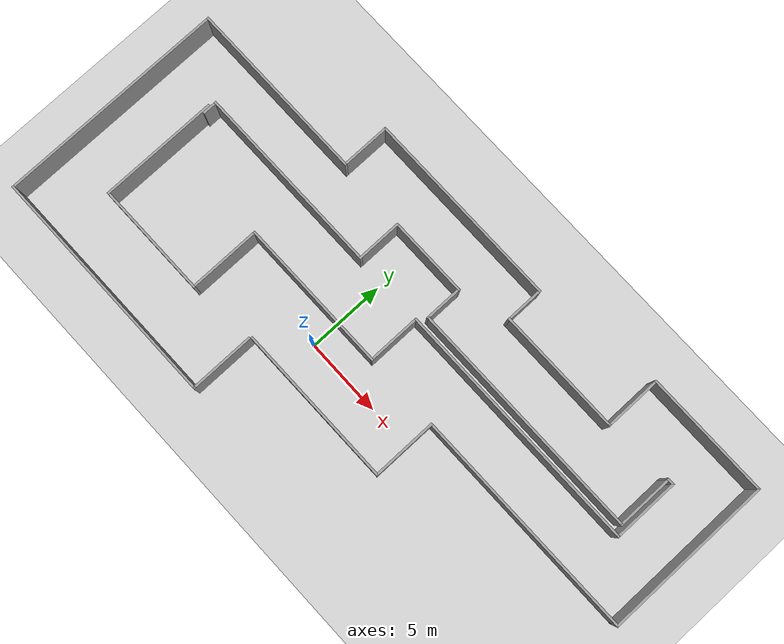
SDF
<sdf version="1.7">
 <world name="default">
  <plugin name="gazebo_ros_state" filename="libgazebo_ros_state.so">
   <ros><namespace>/</namespace></ros>
   <update_rate>1000.0</update_rate>
  </plugin>
  <light name="sun" type="directional">
   <pose>0 0 10 0 -0 0</pose>
   <diffuse>0.8 0.8 0.8 1</diffuse>
   <specular>0.2 0.2 0.2 1</specular>
   <attenuation>
    <range>1000</range>
    <constant>0.9</constant>
    <linear>0.01</linear>
    <quadratic>0.001</quadratic>
   </attenuation>
   <direction>-0.5 0.1 -0.9</direction>
   <spot><inner_angle>0</inner_angle><outer_angle>0</outer_angle><falloff>0</falloff></spot>
  </light>
  <model name="ground_plane">
   <static>1</static>
   <link name="link">
    <collision name="collision">
     <geometry><plane><normal>0 0 1</normal><size>100 100</size></plane></geometry>
     <surface><friction><ode><mu>100</mu><mu2>50</mu2></ode></friction></surface>
    </collision>
    <visual name="visual">
     <cast_shadows>0</cast_shadows>
     <geometry><plane><normal>0 0 1</normal><size>100 100</size></plane></geometry>
     <material>
      <script><uri>file://media/materials/scripts/gazebo.material</uri><name>Gazebo/Grey</name></script>
     </material>
    </visual>
   </link>
  </model>
  <gravity>0 0 -9.8</gravity>
  <magnetic_field>6e-06 2.3e-05 -4.2e-05</magnetic_field>
  <atmosphere type="adiabatic"/>
  <physics type="ode">
   <max_step_size>0.001</max_step_size>
   <real_time_factor>1</real_time_factor>
   <real_time_update_rate>1000</real_time_update_rate>
  </physics>
  <scene><ambient>0.4 0.4 0.4 1</ambient><background>0.7 0.7 0.7 1</background><shadows>1</shadows></scene>
  <audio><device>default</device></audio>
  <spherical_coordinates>
   <surface_model>EARTH_WGS84</surface_model>
   <latitude_deg>0</latitude_deg>
   <longitude_deg>0</longitude_deg>
   <elevation>0</elevation>
   <heading_deg>0</heading_deg>
  </spherical_coordinates>
  <model name="test_worldv5">
   <pose>2.3502 2.98589 0 0 -0 0</pose>
   <link name="Wall_0">
    <collision name="Wall_0_Collision">
     <geometry><box><size>10.5 0.15 2.5</size></box></geometry>
     <pose>0 0 1.25 0 -0 0</pose>
    </collision>
    <visual name="Wall_0_Visual">
     <pose>0 0 1.25 0 -0 0</pose>
     <geometry><box><size>10.5 0.15 2.5</size></box></geometry>
     <material>
      <script><uri>file://media/materials/scripts/gazebo.material</uri><name>Gazebo/Grey</name></script>
      <ambient>1 1 1 1</ambient>
     </material>
     <meta><layer>0</layer></meta>
    </visual>
    <pose>0.425 -5.35 0 0 -0 0</pose>
   </link>
   <link name="Wall_1">
    <collision name="Wall_1_Collision">
     <geometry><box><size>4.25 0.15 2.5</size></box></geometry>
     <pose>0 0 1.25 0 -0 0</pose>
    </collision>
    <visual name="Wall_1_Visual">
     <pose>0 0 1.25 0 -0 0</pose>
     <geometry><box><size>4.25 0.15 2.5</size></box></geometry>
     <material>
      <script><uri>file://media/materials/scripts/gazebo.material</uri><name>Gazebo/Grey</name></script>
      <ambient>1 1 1 1</ambient>
     </material>
     <meta><layer>0</layer></meta>
    </visual>
    <pose>5.6 -3.3 0 0 -0 1.5708</pose>
   </link>
   <link name="Wall_10">
    <collision name="Wall_10_Collision">
     <geometry><box><size>3.25 0.15 2.5</size></box></geometry>
     <pose>0 0 1.25 0 -0 0</pose>
    </collision>
    <visual name="Wall_10_Visual">
     <pose>0 0 1.25 0 -0 0</pose>
     <geometry><box><size>3.25 0.15 2.5</size></box></geometry>
     <material>
      <script><uri>file://media/materials/scripts/gazebo.material</uri><name>Gazebo/Grey</name></script>
      <ambient>1 1 1 1</ambient>
     </material>
     <meta><layer>0</layer></meta>
    </visual>
    <pose>-8.6 6.8 0 0 -0 -1.5708</pose>
   </link>
   <link name="Wall_11">
    <collision name="Wall_11_Collision">
     <geometry><box><size>12 0.15 2.5</size></box></geometry>
     <pose>0 0 1.25 0 -0 0</pose>
    </collision>
    <visual name="Wall_11_Visual">
     <pose>0 0 1.25 0 -0 0</pose>
     <geometry><box><size>12 0.15 2.5</size></box></geometry>
     <material>
      <script><uri>file://media/materials/scripts/gazebo.material</uri><name>Gazebo/Grey</name></script>
      <ambient>1 1 1 1</ambient>
     </material>
     <meta><layer>0</layer></meta>
    </visual>
    <pose>-14.525 5.25 0 0 -0 3.14159</pose>
   </link>
   <link name="Wall_12">
    <collision name="Wall_12_Collision">
     <geometry><box><size>15 0.15 2.5</size></box></geometry>
     <pose>0 0 1.25 0 -0 0</pose>
    </collision>
    <visual name="Wall_12_Visual">
     <pose>0 0 1.25 0 -0 0</pose>
     <geometry><box><size>15 0.15 2.5</size></box></geometry>
     <material>
      <script><uri>file://media/materials/scripts/gazebo.material</uri><name>Gazebo/Grey</name></script>
      <ambient>1 1 1 1</ambient>
     </material>
     <meta><layer>0</layer></meta>
    </visual>
    <pose>-20.45 -2.175 0 0 -0 -1.5708</pose>
   </link>
   <link name="Wall_13">
    <collision name="Wall_13_Collision">
     <geometry><box><size>15.75 0.15 2.5</size></box></geometry>
     <pose>0 0 1.25 0 -0 0</pose>
    </collision>
    <visual name="Wall_13_Visual">
     <pose>0 0 1.25 0 -0 0</pose>
     <geometry><box><size>15.75 0.15 2.5</size></box></geometry>
     <material>
      <script><uri>file://media/materials/scripts/gazebo.material</uri><name>Gazebo/Grey</name></script>
      <ambient>1 1 1 1</ambient>
     </material>
     <meta><layer>0</layer></meta>
    </visual>
    <pose>-12.65 -9.6 0 0 -0 0</pose>
   </link>
   <link name="Wall_14">
    <collision name="Wall_14_Collision">
     <geometry><box><size>4.25 0.15 2.5</size></box></geometry>
     <pose>0 0 1.25 0 -0 0</pose>
    </collision>
    <visual name="Wall_14_Visual">
     <pose>0 0 1.25 0 -0 0</pose>
     <geometry><box><size>4.25 0.15 2.5</size></box></geometry>
     <material>
      <script><uri>file://media/materials/scripts/gazebo.material</uri><name>Gazebo/Grey</name></script>
      <ambient>1 1 1 1</ambient>
     </material>
     <meta><layer>0</layer></meta>
    </visual>
    <pose>-4.85 -7.55 0 0 -0 1.5708</pose>
   </link>
   <link name="Wall_17">
    <collision name="Wall_17_Collision">
     <geometry><box><size>7.75 0.15 2.5</size></box></geometry>
     <pose>0 0 1.25 0 -0 0</pose>
    </collision>
    <visual name="Wall_17_Visual">
     <pose>0 0 1.25 0 -0 0</pose>
     <geometry><box><size>7.75 0.15 2.5</size></box></geometry>
     <material>
      <script><uri>file://media/materials/scripts/gazebo.material</uri><name>Gazebo/Grey</name></script>
      <ambient>1 1 1 1</ambient>
     </material>
     <meta><layer>0</layer></meta>
    </visual>
    <pose>-16.5026 -2.03082 0 0 -0 -1.5708</pose>
   </link>
   <link name="Wall_18">
    <collision name="Wall_18_Collision">
     <geometry><box><size>7.5 0.15 2.5</size></box></geometry>
     <pose>0 0 1.25 0 -0 0</pose>
    </collision>
    <visual name="Wall_18_Visual">
     <pose>0 0 1.25 0 -0 0</pose>
     <geometry><box><size>7.5 0.15 2.5</size></box></geometry>
     <material>
      <script><uri>file://media/materials/scripts/gazebo.material</uri><name>Gazebo/Grey</name></script>
      <ambient>1 1 1 1</ambient>
     </material>
     <meta><layer>0</layer></meta>
    </visual>
    <pose>-12.8276 -5.83082 0 0 -0 0</pose>
   </link>
   <link name="Wall_19">
    <collision name="Wall_19_Collision">
     <geometry><box><size>4.75 0.15 2.5</size></box></geometry>
     <pose>0 0 1.25 0 -0 0</pose>
    </collision>
    <visual name="Wall_19_Visual">
     <pose>0 0 1.25 0 -0 0</pose>
     <geometry><box><size>4.75 0.15 2.5</size></box></geometry>
     <material>
      <script><uri>file://media/materials/scripts/gazebo.material</uri><name>Gazebo/Grey</name></script>
      <ambient>1 1 1 1</ambient>
     </material>
     <meta><layer>0</layer></meta>
    </visual>
    <pose>-9.15262 -3.53082 0 0 -0 1.5708</pose>
   </link>
   <link name="Wall_20">
    <collision name="Wall_20_Collision">
     <geometry><box><size>10 0.15 2.5</size></box></geometry>
     <pose>0 0 1.25 0 -0 0</pose>
    </collision>
    <visual name="Wall_20_Visual">
     <pose>0 0 1.25 0 -0 0</pose>
     <geometry><box><size>10 0.15 2.5</size></box></geometry>
     <material>
      <script><uri>file://media/materials/scripts/gazebo.material</uri><name>Gazebo/Grey</name></script>
      <ambient>1 1 1 1</ambient>
     </material>
     <meta><layer>0</layer></meta>
    </visual>
    <pose>-4.22762 -1.23082 0 0 -0 0</pose>
   </link>
   <link name="Wall_21">
    <collision name="Wall_21_Collision">
     <geometry><box><size>3.5 0.15 2.5</size></box></geometry>
     <pose>0 0 1.25 0 -0 0</pose>
    </collision>
    <visual name="Wall_21_Visual">
     <pose>0 0 1.25 0 -0 0</pose>
     <geometry><box><size>3.5 0.15 2.5</size></box></geometry>
     <material>
      <script><uri>file://media/materials/scripts/gazebo.material</uri><name>Gazebo/Grey</name></script>
      <ambient>1 1 1 1</ambient>
     </material>
     <meta><layer>0</layer></meta>
    </visual>
    <pose>0.697382 0.44418 0 0 -0 1.5708</pose>
   </link>
   <link name="Wall_22">
    <collision name="Wall_22_Collision">
     <geometry><box><size>16.5 0.15 2.5</size></box></geometry>
     <pose>0 0 1.25 0 -0 0</pose>
    </collision>
    <visual name="Wall_22_Visual">
     <pose>0 0 1.25 0 -0 0</pose>
     <geometry><box><size>16.5 0.15 2.5</size></box></geometry>
     <material>
      <script><uri>file://media/materials/scripts/gazebo.material</uri><name>Gazebo/Grey</name></script>
      <ambient>1 1 1 1</ambient>
     </material>
     <meta><layer>0</layer></meta>
    </visual>
    <pose>8.87238 2.11918 0 0 -0 0</pose>
   </link>
   <link name="Wall_23">
    <collision name="Wall_23_Collision">
     <geometry><box><size>4.33091 0.15 2.5</size></box></geometry>
     <pose>0 0 1.25 0 -0 0</pose>
    </collision>
    <visual name="Wall_23_Visual">
     <pose>0 0 1.25 0 -0 0</pose>
     <geometry><box><size>4.33091 0.15 2.5</size></box></geometry>
     <material>
      <script><uri>file://media/materials/scripts/gazebo.material</uri><name>Gazebo/Grey</name></script>
      <ambient>1 1 1 1</ambient>
     </material>
     <meta><layer>0</layer></meta>
    </visual>
    <pose>17.0474 4.20964 0 0 -0 1.5708</pose>
   </link>
   <link name="Wall_26">
    <collision name="Wall_26_Collision">
     <geometry><box><size>0.5 0.15 2.5</size></box></geometry>
     <pose>0 0 1.25 0 -0 0</pose>
    </collision>
    <visual name="Wall_26_Visual">
     <pose>0 0 1.25 0 -0 0</pose>
     <geometry><box><size>0.5 0.15 2.5</size></box></geometry>
     <material>
      <script><uri>file://media/materials/scripts/gazebo.material</uri><name>Gazebo/Grey</name></script>
      <ambient>1 1 1 1</ambient>
     </material>
     <meta><layer>0</layer></meta>
    </visual>
    <pose>16.8724 6.30009 0 0 -0 3.14159</pose>
   </link>
   <link name="Wall_27">
    <collision name="Wall_27_Collision">
     <geometry><box><size>3.75 0.15 2.5</size></box></geometry>
     <pose>0 0 1.25 0 -0 0</pose>
    </collision>
    <visual name="Wall_27_Visual">
     <pose>0 0 1.25 0 -0 0</pose>
     <geometry><box><size>3.75 0.15 2.5</size></box></geometry>
     <material>
      <script><uri>file://media/materials/scripts/gazebo.material</uri><name>Gazebo/Grey</name></script>
      <ambient>1 1 1 1</ambient>
     </material>
     <meta><layer>0</layer></meta>
    </visual>
    <pose>16.6974 4.50009 0 0 -0 -1.5708</pose>
   </link>
   <link name="Wall_28">
    <collision name="Wall_28_Collision">
     <geometry><box><size>15.75 0.15 2.5</size></box></geometry>
     <pose>0 0 1.25 0 -0 0</pose>
    </collision>
    <visual name="Wall_28_Visual">
     <pose>0 0 1.25 0 -0 0</pose>
     <geometry><box><size>15.75 0.15 2.5</size></box></geometry>
     <material>
      <script><uri>file://media/materials/scripts/gazebo.material</uri><name>Gazebo/Grey</name></script>
      <ambient>1 1 1 1</ambient>
     </material>
     <meta><layer>0</layer></meta>
    </visual>
    <pose>8.89738 2.70009 0 0 -0 3.14159</pose>
   </link>
   <link name="Wall_29">
    <collision name="Wall_29_Collision">
     <geometry><box><size>2.5 0.15 2.5</size></box></geometry>
     <pose>0 0 1.25 0 -0 0</pose>
    </collision>
    <visual name="Wall_29_Visual">
     <pose>0 0 1.25 0 -0 0</pose>
     <geometry><box><size>2.5 0.15 2.5</size></box></geometry>
     <material>
      <script><uri>file://media/materials/scripts/gazebo.material</uri><name>Gazebo/Grey</name></script>
      <ambient>1 1 1 1</ambient>
     </material>
     <meta><layer>0</layer></meta>
    </visual>
    <pose>1.09738 3.87509 0 0 -0 1.5708</pose>
   </link>
   <link name="Wall_3">
    <collision name="Wall_3_Collision">
     <geometry><box><size>15 0.15 2.5</size></box></geometry>
     <pose>0 0 1.25 0 -0 0</pose>
    </collision>
    <visual name="Wall_3_Visual">
     <pose>0 0 1.25 0 -0 0</pose>
     <geometry><box><size>15 0.15 2.5</size></box></geometry>
     <material>
      <script><uri>file://media/materials/scripts/gazebo.material</uri><name>Gazebo/Grey</name></script>
      <ambient>1 1 1 1</ambient>
     </material>
     <meta><layer>0</layer></meta>
    </visual>
    <pose>13.025 -1.25 0 0 -0 0</pose>
   </link>
   <link name="Wall_30">
    <collision name="Wall_30_Collision">
     <geometry><box><size>5.25 0.15 2.5</size></box></geometry>
     <pose>0 0 1.25 0 -0 0</pose>
    </collision>
    <visual name="Wall_30_Visual">
     <pose>0 0 1.25 0 -0 0</pose>
     <geometry><box><size>5.25 0.15 2.5</size></box></geometry>
     <material>
      <script><uri>file://media/materials/scripts/gazebo.material</uri><name>Gazebo/Grey</name></script>
      <ambient>1 1 1 1</ambient>
     </material>
     <meta><layer>0</layer></meta>
    </visual>
    <pose>-1.45262 5.05009 0 0 -0 3.14159</pose>
   </link>
   <link name="Wall_31">
    <collision name="Wall_31_Collision">
     <geometry><box><size>3 0.15 2.5</size></box></geometry>
     <pose>0 0 1.25 0 -0 0</pose>
    </collision>
    <visual name="Wall_31_Visual">
     <pose>0 0 1.25 0 -0 0</pose>
     <geometry><box><size>3 0.15 2.5</size></box></geometry>
     <material>
      <script><uri>file://media/materials/scripts/gazebo.material</uri><name>Gazebo/Grey</name></script>
      <ambient>1 1 1 1</ambient>
     </material>
     <meta><layer>0</layer></meta>
    </visual>
    <pose>-4.00262 3.62509 0 0 -0 -1.5708</pose>
   </link>
   <link name="Wall_32">
    <collision name="Wall_32_Collision">
     <geometry><box><size>12.5 0.15 2.5</size></box></geometry>
     <pose>0 0 1.25 0 -0 0</pose>
    </collision>
    <visual name="Wall_32_Visual">
     <pose>0 0 1.25 0 -0 0</pose>
     <geometry><box><size>12.5 0.15 2.5</size></box></geometry>
     <material>
      <script><uri>file://media/materials/scripts/gazebo.material</uri><name>Gazebo/Grey</name></script>
      <ambient>1 1 1 1</ambient>
     </material>
     <meta><layer>0</layer></meta>
    </visual>
    <pose>-10.1776 2.20009 0 0 -0 3.14159</pose>
   </link>
   <link name="Wall_37">
    <collision name="Wall_37_Collision">
     <geometry><box><size>1 0.15 2.5</size></box></geometry>
     <pose>0 0 1.25 0 -0 0</pose>
    </collision>
    <visual name="Wall_37_Visual">
     <pose>0 0 1.25 0 -0 0</pose>
     <geometry><box><size>1 0.15 2.5</size></box></geometry>
     <material>
      <script><uri>file://media/materials/scripts/gazebo.material</uri><name>Gazebo/Grey</name></script>
      <ambient>1 1 1 1</ambient>
     </material>
     <meta><layer>0</layer></meta>
    </visual>
    <pose>-16.3526 1.77509 0 0 -0 -1.5708</pose>
   </link>
   <link name="Wall_4">
    <collision name="Wall_4_Collision">
     <geometry><box><size>11 0.15 2.5</size></box></geometry>
     <pose>0 0 1.25 0 -0 0</pose>
    </collision>
    <visual name="Wall_4_Visual">
     <pose>0 0 1.25 0 -0 0</pose>
     <geometry><box><size>11 0.15 2.5</size></box></geometry>
     <material>
      <script><uri>file://media/materials/scripts/gazebo.material</uri><name>Gazebo/Grey</name></script>
      <ambient>1 1 1 1</ambient>
     </material>
     <meta><layer>0</layer></meta>
    </visual>
    <pose>20.45 4.175 0 0 -0 1.5708</pose>
   </link>
   <link name="Wall_5">
    <collision name="Wall_5_Collision">
     <geometry><box><size>8.25 0.15 2.5</size></box></geometry>
     <pose>0 0 1.25 0 -0 0</pose>
    </collision>
    <visual name="Wall_5_Visual">
     <pose>0 0 1.25 0 -0 0</pose>
     <geometry><box><size>8.25 0.15 2.5</size></box></geometry>
     <material>
      <script><uri>file://media/materials/scripts/gazebo.material</uri><name>Gazebo/Grey</name></script>
      <ambient>1 1 1 1</ambient>
     </material>
     <meta><layer>0</layer></meta>
    </visual>
    <pose>16.4 9.6 0 0 -0 3.14159</pose>
   </link>
   <link name="Wall_6">
    <collision name="Wall_6_Collision">
     <geometry><box><size>3.75 0.15 2.5</size></box></geometry>
     <pose>0 0 1.25 0 -0 0</pose>
    </collision>
    <visual name="Wall_6_Visual">
     <pose>0 0 1.25 0 -0 0</pose>
     <geometry><box><size>3.75 0.15 2.5</size></box></geometry>
     <material>
      <script><uri>file://media/materials/scripts/gazebo.material</uri><name>Gazebo/Grey</name></script>
      <ambient>1 1 1 1</ambient>
     </material>
     <meta><layer>0</layer></meta>
    </visual>
    <pose>12.35 7.8 0 0 -0 -1.5708</pose>
   </link>
   <link name="Wall_7">
    <collision name="Wall_7_Collision">
     <geometry><box><size>8.25 0.15 2.5</size></box></geometry>
     <pose>0 0 1.25 0 -0 0</pose>
    </collision>
    <visual name="Wall_7_Visual">
     <pose>0 0 1.25 0 -0 0</pose>
     <geometry><box><size>8.25 0.15 2.5</size></box></geometry>
     <material>
      <script><uri>file://media/materials/scripts/gazebo.material</uri><name>Gazebo/Grey</name></script>
      <ambient>1 1 1 1</ambient>
     </material>
     <meta><layer>0</layer></meta>
    </visual>
    <pose>8.3 6 0 0 -0 3.14159</pose>
   </link>
   <link name="Wall_8">
    <collision name="Wall_8_Collision">
     <geometry><box><size>2.5 0.15 2.5</size></box></geometry>
     <pose>0 0 1.25 0 -0 0</pose>
    </collision>
    <visual name="Wall_8_Visual">
     <pose>0 0 1.25 0 -0 0</pose>
     <geometry><box><size>2.5 0.15 2.5</size></box></geometry>
     <material>
      <script><uri>file://media/materials/scripts/gazebo.material</uri><name>Gazebo/Grey</name></script>
      <ambient>1 1 1 1</ambient>
     </material>
     <meta><layer>0</layer></meta>
    </visual>
    <pose>4.25 7.175 0 0 -0 1.5708</pose>
   </link>
   <link name="Wall_9">
    <collision name="Wall_9_Collision">
     <geometry><box><size>13 0.15 2.5</size></box></geometry>
     <pose>0 0 1.25 0 -0 0</pose>
    </collision>
    <visual name="Wall_9_Visual">
     <pose>0 0 1.25 0 -0 0</pose>
     <geometry><box><size>13 0.15 2.5</size></box></geometry>
     <material>
      <script><uri>file://media/materials/scripts/gazebo.material</uri><name>Gazebo/Grey</name></script>
      <ambient>1 1 1 1</ambient>
     </material>
     <meta><layer>0</layer></meta>
    </visual>
    <pose>-2.175 8.35 0 0 -0 3.14159</pose>
   </link>
   <static>1</static>
  </model>
 </world>
</sdf>
